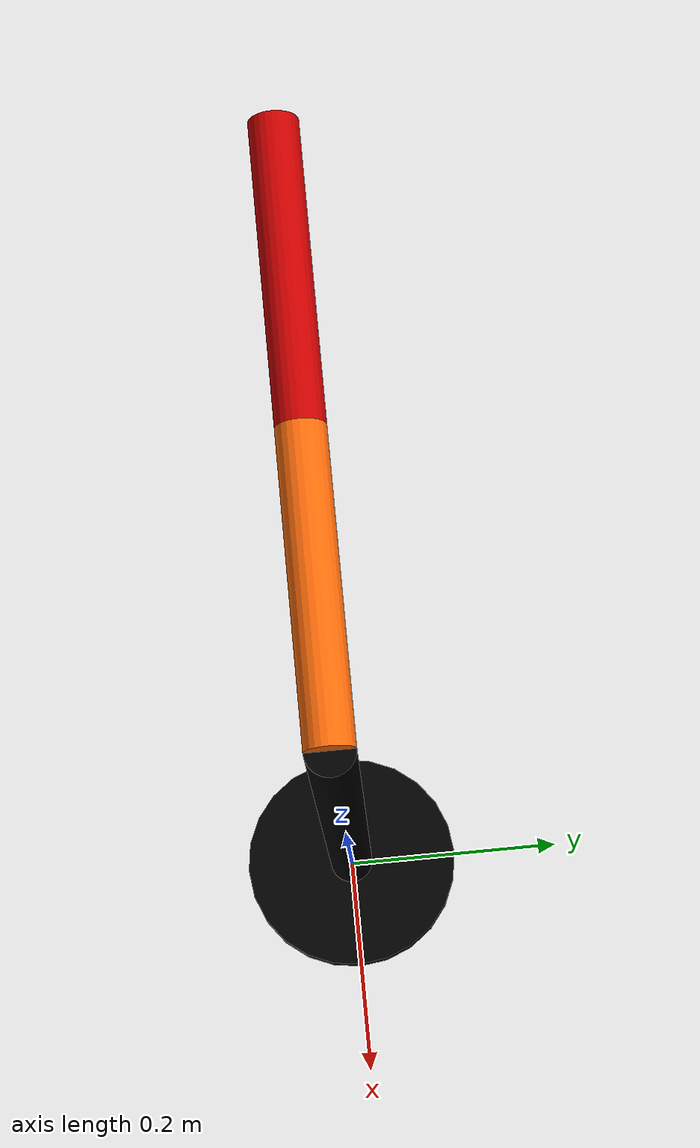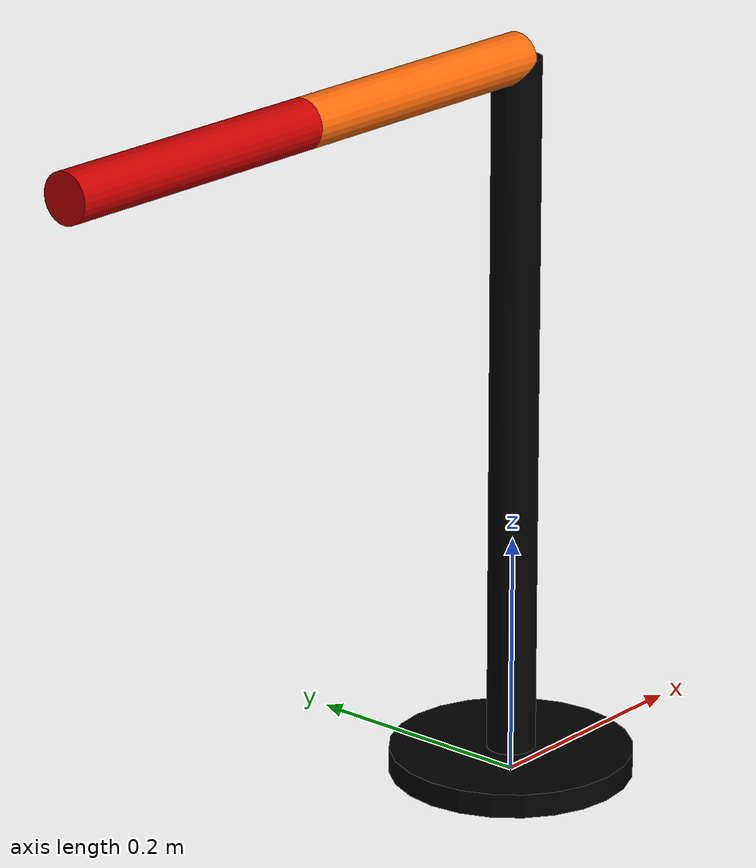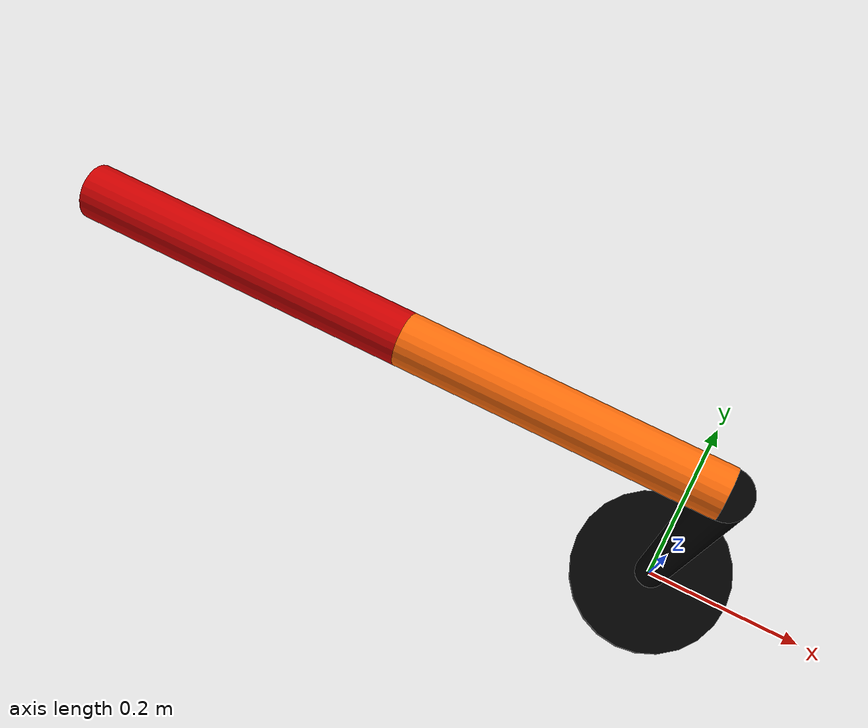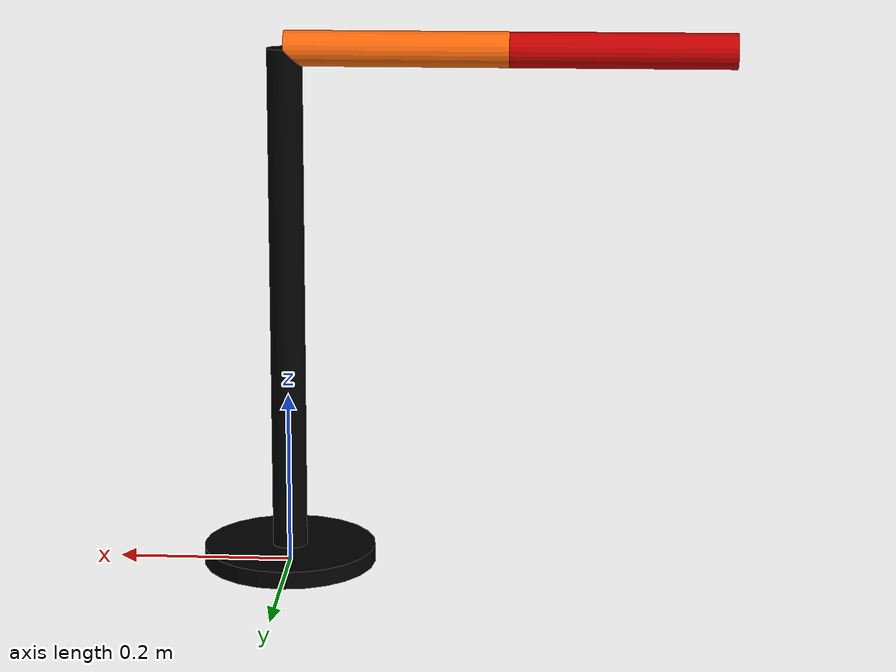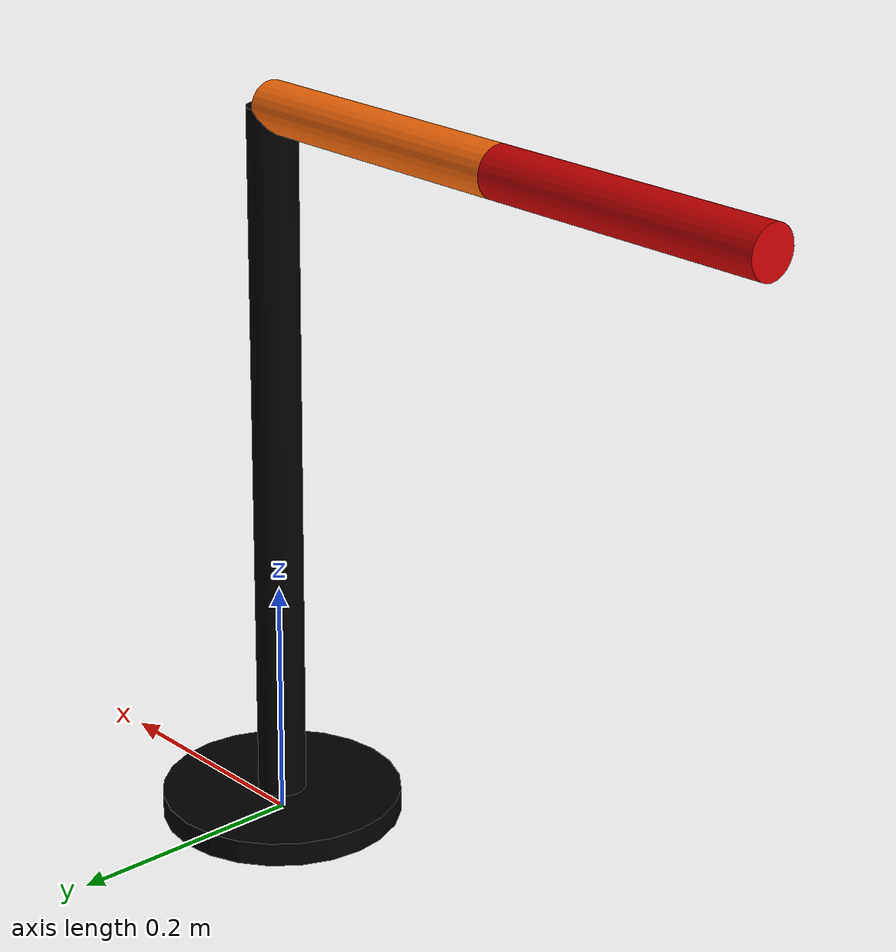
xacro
<?xml version="1.0"?>

<robot name="planar_robot" xmlns:xacro="http://ros.org/wiki/xacro">

    <!-- Constants for robot dimensions -->
    <xacro:property name="radius" value="0.02" />
    <xacro:property name="length" value="0.25" />
    <xacro:property name="damping" value="0.1" />
    <xacro:property name="mass" value="0.5" />
    <xacro:property name="effort_limit" value="10" />
    <xacro:property name="velocity_limit" value="100" />

    <xacro:include filename="$(find planar_robot_tutorial)/urdf/materials.xacro" />
    <xacro:include filename="$(find planar_robot_tutorial)/urdf/planar_robot.gazebo" />

    <!-- World -->
    <link name='world' />

    <joint name="joint_base" type="fixed">
        <parent link="world" />
        <child link="base_link"/>
    </joint>

    <!-- Base link -->
    <link name='base_link'>
        <inertial>
            <origin xyz="-0.00 0.0 0.3" rpy="0 0 0" />
            <inertia ixx="1.11" ixy="0.0" ixz="0.0" iyy="100.11" iyz="0.0" izz="1.01" />
            <mass value="101.0" />
        </inertial>
        <visual>
            <origin xyz="0 0.0 0.01" rpy="0 0 0" />
            <geometry>
                <cylinder radius="0.1" length="0.02"/>
            </geometry>
            <material name="black"/>
        </visual>
        <collision>
            <origin xyz="0 0.0 0.01" rpy="0 0 0" />
            <geometry>
                <cylinder radius="0.1" length="0.02"/>
            </geometry>
        </collision>
        <visual>
            <origin xyz="0 0.0 0.3" rpy="0 0 0" />
            <geometry>
                <cylinder radius="0.02" length="0.6"/>
            </geometry>
            <material name="black"/>
        </visual>
        <collision>
            <origin xyz="0 0.0 0.3" rpy="0 0 0" />
            <geometry>
                <cylinder radius="0.02" length="0.6"/>
            </geometry>
        </collision>
    </link>

    <!-- link 1 -->
    <link name='link_1'>
        <inertial>
            <origin xyz="-0.00 -0.00 ${length/2}" rpy="0 0 0" />
            <inertia ixx="0.0" ixy="0.0" ixz="0.0" iyy="0.0104" iyz="0.0" izz="0.0" />
            <mass value="${mass}" />
        </inertial>
        <visual>
            <origin xyz="0 0 ${length/2}" rpy="0 0 0" />
            <geometry>
                <cylinder radius="${radius}" length="${length}"/>
            </geometry>
            <material name="orange"/>
        </visual>
        <collision>
            <origin xyz="0 0 ${length/2}" rpy="0 0 0" />
            <geometry>
                <cylinder radius="${radius}" length="${length}"/>
            </geometry>
        </collision>
    </link>

    <joint name="joint_1" type="continuous">
        <origin xyz="0 0 0.6" rpy= "0 -1.57 0" />
        <child link="link_1"/>
        <parent link="base_link" />
        <axis xyz="0 1 0" />
        <dynamics damping="${damping}" friction="0.0"/>
        <limit effort="${effort_limit}" velocity="${velocity_limit}"/>
    </joint>

    <!-- link 2 -->
    <link name='link_2'>
        <inertial>
            <origin xyz="-0.00 -0.00 0.125" rpy="0 0 0" />
            <inertia ixx="0.0" ixy="0.0" ixz="0.0" iyy="0.0104" iyz="0.0" izz="0.0" />
            <mass value="${mass}" />
        </inertial>
        <visual>
            <origin xyz="0 0 0.125" rpy="0 0 0" />
            <geometry>
                <cylinder radius="0.02" length="0.25"/>
            </geometry>
            <material name="red"/>
        </visual>
        <collision>
            <origin xyz="0 0 0.125" rpy="0 0 0" />
            <geometry>
                <cylinder radius="0.02" length="0.25"/>
            </geometry>
        </collision>
    </link>

    <joint name="joint_2" type="continuous">
        <origin xyz="0 0 ${length}" rpy= "0 0 0" />
        <child link="link_2"/>
        <parent link="link_1" />
        <axis xyz="0 1 0" />
        <dynamics damping="${damping}" />
        <limit effort="${effort_limit}" velocity="${velocity_limit}"/>
    </joint>

    <transmission name="tran1">
        <type>transmission_interface/SimpleTransmission</type>
        <joint name="joint_1">
        <hardwareInterface>hardware_interface/EffortJointInterface</hardwareInterface>
        </joint>
        <actuator name="motor1">
        <hardwareInterface>hardware_interface/EffortJointInterface</hardwareInterface>
        <mechanicalReduction>1</mechanicalReduction>
        </actuator>
    </transmission>

    <transmission name="tran2">
        <type>transmission_interface/SimpleTransmission</type>
        <joint name="joint_2">
        <hardwareInterface>hardware_interface/EffortJointInterface</hardwareInterface>
        </joint>
        <actuator name="motor2">
        <hardwareInterface>hardware_interface/EffortJointInterface</hardwareInterface>
        <mechanicalReduction>1</mechanicalReduction>
        </actuator>
    </transmission>

</robot>

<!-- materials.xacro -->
<robot>

    <material name="orange">
        <color rgba="${255/255} ${108/255} ${10/255} 1.0"/>
    </material>

    <material name="red">
        <color rgba="0.8 0.0 0.0 1.0"/>
    </material>

    <material name="black">
        <color rgba="0.0 0.0 0.0 1.0"/>
    </material>

</robot>
